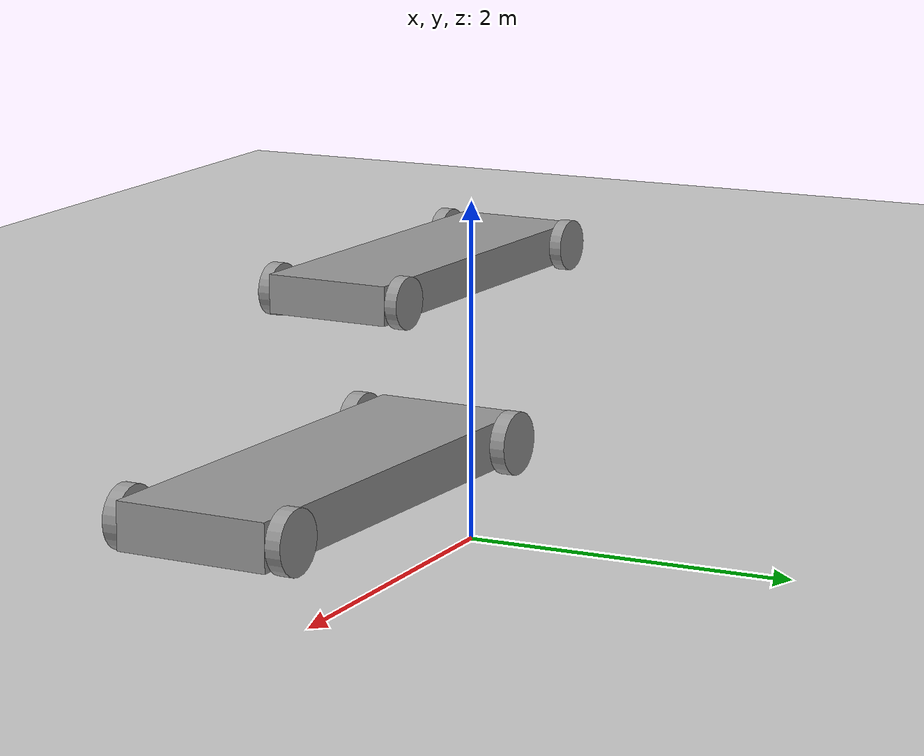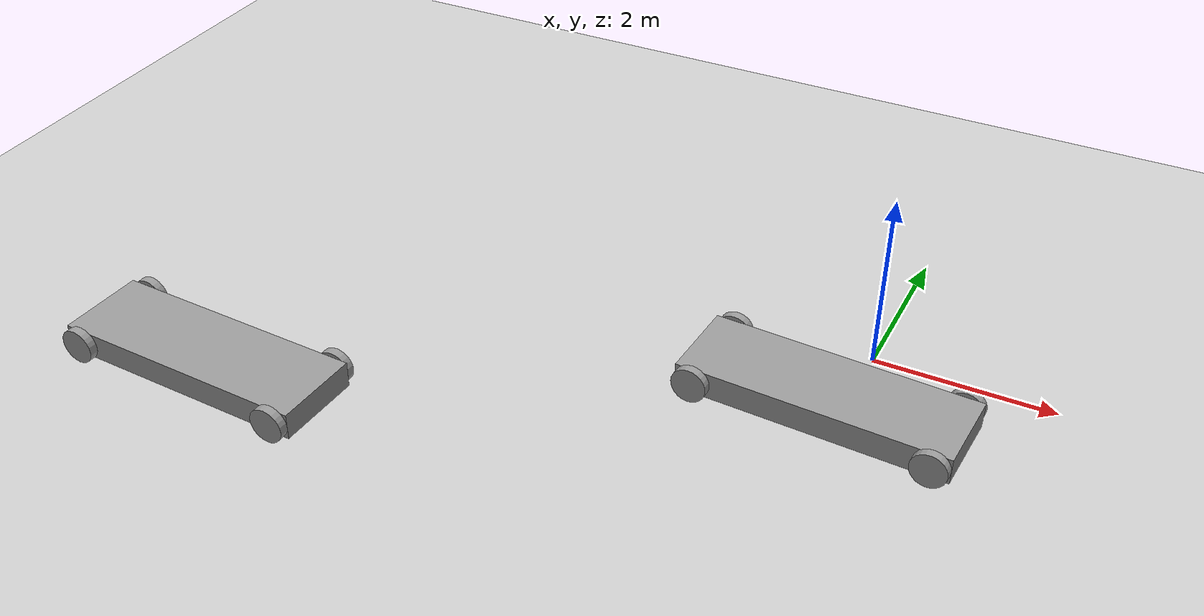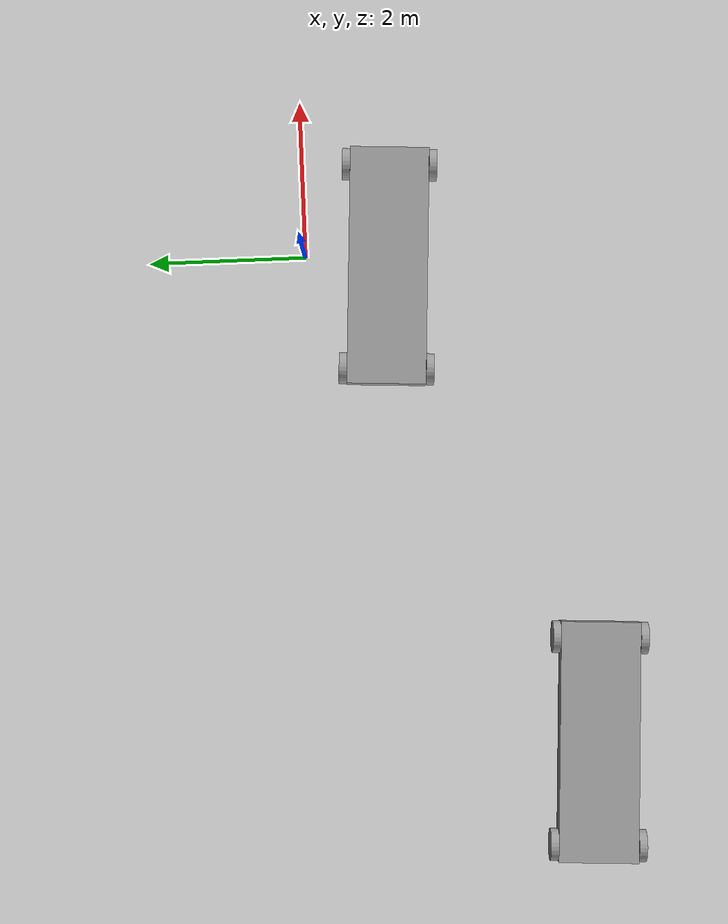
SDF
<sdf version="1.6">
 <world name="default">
  <model name="ground_plane">
   <static>1</static>
   <link name="link">
    <collision name="collision">
     <geometry><plane><normal>0 0 1</normal><size>100 100</size></plane></geometry>
     <surface><friction><ode><mu>100</mu><mu2>50</mu2></ode></friction></surface>
    </collision>
    <visual name="visual">
     <cast_shadows>0</cast_shadows>
     <geometry><plane><normal>0 0 1</normal><size>100 100</size></plane></geometry>
     <material>
      <script><uri>file://media/materials/scripts/gazebo.material</uri><name>Gazebo/Grey</name></script>
     </material>
    </visual>
   </link>
  </model>
  <model name="myrobot">
   <link name="link_0">
    <inertial>
     <mass>1</mass>
     <inertia>
      <ixx>0.166667</ixx>
      <ixy>0</ixy>
      <ixz>0</ixz>
      <iyy>0.166667</iyy>
      <iyz>0</iyz>
      <izz>0.166667</izz>
     </inertia>
    </inertial>
    <pose>3e-06 -1e-06 -1.3e-05 0 -0 0</pose>
    <visual name="visual">
     <geometry><box><size>3 1 0.3</size></box></geometry>
     <material>
      <lighting>1</lighting>
      <script><uri>file://media/materials/scripts/gazebo.material</uri><name>Gazebo/Grey</name></script>
      <shader type="vertex"><normal_map>__default__</normal_map></shader>
      <ambient>0.3 0.3 0.3 1</ambient>
      <diffuse>0.7 0.7 0.7 1</diffuse>
      <specular>0.01 0.01 0.01 1</specular>
      <emissive>0 0 0 1</emissive>
     </material>
    </visual>
    <collision name="collision">
     <geometry><box><size>3 1 0.3</size></box></geometry>
     <surface>
      <friction>
       <ode><mu>1</mu><mu2>1</mu2><fdir1>0 0 0</fdir1><slip1>0</slip1><slip2>0</slip2></ode>
       <torsional>
        <coefficient>1</coefficient>
        <patch_radius>0</patch_radius>
        <surface_radius>0</surface_radius>
        <use_patch_radius>1</use_patch_radius>
        <ode><slip>0</slip></ode>
       </torsional>
      </friction>
      <bounce><restitution_coefficient>0</restitution_coefficient><threshold>1e+06</threshold></bounce>
      <contact>
       <collide_without_contact>0</collide_without_contact>
       <collide_without_contact_bitmask>1</collide_without_contact_bitmask>
       <collide_bitmask>1</collide_bitmask>
       <ode>
        <soft_cfm>0</soft_cfm>
        <soft_erp>0.2</soft_erp>
        <kp>1e+13</kp>
        <kd>1</kd>
        <max_vel>0.01</max_vel>
        <min_depth>0</min_depth>
       </ode>
       <bullet>
        <split_impulse>1</split_impulse>
        <split_impulse_penetration_threshold>-0.01</split_impulse_penetration_threshold>
        <soft_cfm>0</soft_cfm>
        <soft_erp>0.2</soft_erp>
        <kp>1e+13</kp>
        <kd>1</kd>
       </bullet>
      </contact>
     </surface>
    </collision>
   </link>
   <link name="link_1">
    <inertial>
     <mass>1</mass>
     <inertia><ixx>0.145833</ixx><ixy>0</ixy><ixz>0</ixz><iyy>0.145833</iyy><iyz>0</iyz><izz>0.125</izz></inertia>
     <pose>0 0 0.2 0 -0 0</pose>
    </inertial>
    <pose>1.3 -0.550288 5.2e-05 1.57223 -0 0</pose>
    <visual name="visual">
     <geometry><cylinder><radius>0.2</radius><length>0.1</length></cylinder></geometry>
     <material>
      <lighting>1</lighting>
      <script><uri>file://media/materials/scripts/gazebo.material</uri><name>Gazebo/Grey</name></script>
      <shader type="vertex"><normal_map>__default__</normal_map></shader>
      <ambient>0.3 0.3 0.3 1</ambient>
      <diffuse>0.7 0.7 0.7 1</diffuse>
      <specular>0.01 0.01 0.01 1</specular>
      <emissive>0 0 0 1</emissive>
     </material>
    </visual>
    <collision name="collision">
     <geometry><cylinder><radius>0.2</radius><length>0.1</length></cylinder></geometry>
     <surface>
      <friction>
       <ode><mu>1</mu><mu2>1</mu2><fdir1>0 0 0</fdir1><slip1>0</slip1><slip2>0</slip2></ode>
       <torsional>
        <coefficient>1</coefficient>
        <patch_radius>0</patch_radius>
        <surface_radius>0</surface_radius>
        <use_patch_radius>1</use_patch_radius>
        <ode><slip>0</slip></ode>
       </torsional>
      </friction>
      <bounce><restitution_coefficient>0</restitution_coefficient><threshold>1e+06</threshold></bounce>
      <contact>
       <collide_without_contact>0</collide_without_contact>
       <collide_without_contact_bitmask>1</collide_without_contact_bitmask>
       <collide_bitmask>1</collide_bitmask>
       <ode>
        <soft_cfm>0</soft_cfm>
        <soft_erp>0.2</soft_erp>
        <kp>1e+13</kp>
        <kd>1</kd>
        <max_vel>0.01</max_vel>
        <min_depth>0</min_depth>
       </ode>
       <bullet>
        <split_impulse>1</split_impulse>
        <split_impulse_penetration_threshold>-0.01</split_impulse_penetration_threshold>
        <soft_cfm>0</soft_cfm>
        <soft_erp>0.2</soft_erp>
        <kp>1e+13</kp>
        <kd>1</kd>
       </bullet>
      </contact>
     </surface>
    </collision>
   </link>
   <link name="link_1_clone">
    <inertial>
     <mass>1</mass>
     <inertia><ixx>0.145833</ixx><ixy>0</ixy><ixz>0</ixz><iyy>0.145833</iyy><iyz>0</iyz><izz>0.125</izz></inertia>
     <pose>0 0 0.2 0 -0 0</pose>
    </inertial>
    <pose>-1.3 -0.550288 -1.3e-05 1.57223 -0 0</pose>
    <visual name="visual">
     <geometry><cylinder><radius>0.2</radius><length>0.1</length></cylinder></geometry>
     <material>
      <lighting>1</lighting>
      <script><uri>file://media/materials/scripts/gazebo.material</uri><name>Gazebo/Grey</name></script>
      <shader type="vertex"><normal_map>__default__</normal_map></shader>
      <ambient>0.3 0.3 0.3 1</ambient>
      <diffuse>0.7 0.7 0.7 1</diffuse>
      <specular>0.01 0.01 0.01 1</specular>
      <emissive>0 0 0 1</emissive>
     </material>
    </visual>
    <collision name="collision">
     <geometry><cylinder><radius>0.2</radius><length>0.1</length></cylinder></geometry>
     <surface>
      <friction>
       <ode><mu>1</mu><mu2>1</mu2><fdir1>0 0 0</fdir1><slip1>0</slip1><slip2>0</slip2></ode>
       <torsional>
        <coefficient>1</coefficient>
        <patch_radius>0</patch_radius>
        <surface_radius>0</surface_radius>
        <use_patch_radius>1</use_patch_radius>
        <ode><slip>0</slip></ode>
       </torsional>
      </friction>
      <bounce><restitution_coefficient>0</restitution_coefficient><threshold>1e+06</threshold></bounce>
      <contact>
       <collide_without_contact>0</collide_without_contact>
       <collide_without_contact_bitmask>1</collide_without_contact_bitmask>
       <collide_bitmask>1</collide_bitmask>
       <ode>
        <soft_cfm>0</soft_cfm>
        <soft_erp>0.2</soft_erp>
        <kp>1e+13</kp>
        <kd>1</kd>
        <max_vel>0.01</max_vel>
        <min_depth>0</min_depth>
       </ode>
       <bullet>
        <split_impulse>1</split_impulse>
        <split_impulse_penetration_threshold>-0.01</split_impulse_penetration_threshold>
        <soft_cfm>0</soft_cfm>
        <soft_erp>0.2</soft_erp>
        <kp>1e+13</kp>
        <kd>1</kd>
       </bullet>
      </contact>
     </surface>
    </collision>
   </link>
   <link name="link_1_clone_0">
    <inertial>
     <mass>1</mass>
     <inertia><ixx>0.145833</ixx><ixy>0</ixy><ixz>0</ixz><iyy>0.145833</iyy><iyz>0</iyz><izz>0.125</izz></inertia>
     <pose>0 0 0.2 0 -0 0</pose>
    </inertial>
    <pose>1.3 0.550285 -0.002459 1.57223 -0 0</pose>
    <visual name="visual">
     <geometry><cylinder><radius>0.2</radius><length>0.1</length></cylinder></geometry>
     <material>
      <lighting>1</lighting>
      <script><uri>file://media/materials/scripts/gazebo.material</uri><name>Gazebo/Grey</name></script>
      <shader type="vertex"><normal_map>__default__</normal_map></shader>
      <ambient>0.3 0.3 0.3 1</ambient>
      <diffuse>0.7 0.7 0.7 1</diffuse>
      <specular>0.01 0.01 0.01 1</specular>
      <emissive>0 0 0 1</emissive>
     </material>
    </visual>
    <collision name="collision">
     <geometry><cylinder><radius>0.2</radius><length>0.1</length></cylinder></geometry>
     <surface>
      <friction>
       <ode><mu>1</mu><mu2>1</mu2><fdir1>0 0 0</fdir1><slip1>0</slip1><slip2>0</slip2></ode>
       <torsional>
        <coefficient>1</coefficient>
        <patch_radius>0</patch_radius>
        <surface_radius>0</surface_radius>
        <use_patch_radius>1</use_patch_radius>
        <ode><slip>0</slip></ode>
       </torsional>
      </friction>
      <bounce><restitution_coefficient>0</restitution_coefficient><threshold>1e+06</threshold></bounce>
      <contact>
       <collide_without_contact>0</collide_without_contact>
       <collide_without_contact_bitmask>1</collide_without_contact_bitmask>
       <collide_bitmask>1</collide_bitmask>
       <ode>
        <soft_cfm>0</soft_cfm>
        <soft_erp>0.2</soft_erp>
        <kp>1e+13</kp>
        <kd>1</kd>
        <max_vel>0.01</max_vel>
        <min_depth>0</min_depth>
       </ode>
       <bullet>
        <split_impulse>1</split_impulse>
        <split_impulse_penetration_threshold>-0.01</split_impulse_penetration_threshold>
        <soft_cfm>0</soft_cfm>
        <soft_erp>0.2</soft_erp>
        <kp>1e+13</kp>
        <kd>1</kd>
       </bullet>
      </contact>
     </surface>
    </collision>
   </link>
   <link name="link_1_clone_1">
    <inertial>
     <mass>1</mass>
     <inertia><ixx>0.145833</ixx><ixy>0</ixy><ixz>0</ixz><iyy>0.145833</iyy><iyz>0</iyz><izz>0.125</izz></inertia>
     <pose>0 0 0.2 0 -0 0</pose>
    </inertial>
    <pose>-1.3 0.550285 -1.3e-05 1.57223 -0 0</pose>
    <visual name="visual">
     <geometry><cylinder><radius>0.2</radius><length>0.1</length></cylinder></geometry>
     <material>
      <lighting>1</lighting>
      <script><uri>file://media/materials/scripts/gazebo.material</uri><name>Gazebo/Grey</name></script>
      <shader type="vertex"><normal_map>__default__</normal_map></shader>
      <ambient>0.3 0.3 0.3 1</ambient>
      <diffuse>0.7 0.7 0.7 1</diffuse>
      <specular>0.01 0.01 0.01 1</specular>
      <emissive>0 0 0 1</emissive>
     </material>
    </visual>
    <collision name="collision">
     <geometry><cylinder><radius>0.2</radius><length>0.1</length></cylinder></geometry>
     <surface>
      <friction>
       <ode><mu>1</mu><mu2>1</mu2><fdir1>0 0 0</fdir1><slip1>0</slip1><slip2>0</slip2></ode>
       <torsional>
        <coefficient>1</coefficient>
        <patch_radius>0</patch_radius>
        <surface_radius>0</surface_radius>
        <use_patch_radius>1</use_patch_radius>
        <ode><slip>0</slip></ode>
       </torsional>
      </friction>
      <bounce><restitution_coefficient>0</restitution_coefficient><threshold>1e+06</threshold></bounce>
      <contact>
       <collide_without_contact>0</collide_without_contact>
       <collide_without_contact_bitmask>1</collide_without_contact_bitmask>
       <collide_bitmask>1</collide_bitmask>
       <ode>
        <soft_cfm>0</soft_cfm>
        <soft_erp>0.2</soft_erp>
        <kp>1e+13</kp>
        <kd>1</kd>
        <max_vel>0.01</max_vel>
        <min_depth>0</min_depth>
       </ode>
       <bullet>
        <split_impulse>1</split_impulse>
        <split_impulse_penetration_threshold>-0.01</split_impulse_penetration_threshold>
        <soft_cfm>0</soft_cfm>
        <soft_erp>0.2</soft_erp>
        <kp>1e+13</kp>
        <kd>1</kd>
       </bullet>
      </contact>
     </surface>
    </collision>
   </link>
   <joint name="link_0_JOINT_1" type="revolute">
    <parent>link_0</parent>
    <child>link_1</child>
    <axis>
     <xyz>0 0 1</xyz>
     <use_parent_model_frame>0</use_parent_model_frame>
     <limit>
      <lower>-1.79769e+308</lower>
      <upper>1.79769e+308</upper>
      <effort>-1</effort>
      <velocity>-1</velocity>
     </limit>
     <dynamics>
      <spring_reference>0</spring_reference>
      <spring_stiffness>0</spring_stiffness>
      <damping>0</damping>
      <friction>0</friction>
     </dynamics>
    </axis>
    <physics>
     <ode><limit><cfm>0</cfm><erp>0.2</erp></limit><suspension><cfm>0</cfm><erp>0.2</erp></suspension></ode>
    </physics>
   </joint>
   <joint name="link_0_JOINT_2" type="revolute">
    <parent>link_0</parent>
    <child>link_1_clone</child>
    <axis>
     <xyz>0 0 1</xyz>
     <use_parent_model_frame>0</use_parent_model_frame>
     <limit>
      <lower>-1.79769e+308</lower>
      <upper>1.79769e+308</upper>
      <effort>-1</effort>
      <velocity>-1</velocity>
     </limit>
     <dynamics>
      <spring_reference>0</spring_reference>
      <spring_stiffness>0</spring_stiffness>
      <damping>0</damping>
      <friction>0</friction>
     </dynamics>
    </axis>
    <physics>
     <ode><limit><cfm>0</cfm><erp>0.2</erp></limit><suspension><cfm>0</cfm><erp>0.2</erp></suspension></ode>
    </physics>
   </joint>
   <joint name="link_0_JOINT_3" type="revolute">
    <parent>link_0</parent>
    <child>link_1_clone_0</child>
    <axis>
     <xyz>-0 -0 -1</xyz>
     <use_parent_model_frame>0</use_parent_model_frame>
     <limit>
      <lower>-1.79769e+308</lower>
      <upper>1.79769e+308</upper>
      <effort>-1</effort>
      <velocity>-1</velocity>
     </limit>
     <dynamics>
      <spring_reference>0</spring_reference>
      <spring_stiffness>0</spring_stiffness>
      <damping>0</damping>
      <friction>0</friction>
     </dynamics>
    </axis>
    <physics>
     <ode><limit><cfm>0</cfm><erp>0.2</erp></limit><suspension><cfm>0</cfm><erp>0.2</erp></suspension></ode>
    </physics>
   </joint>
   <joint name="link_0_JOINT_4" type="revolute">
    <parent>link_0</parent>
    <child>link_1_clone_1</child>
    <axis>
     <xyz>-0 -0 -1</xyz>
     <use_parent_model_frame>0</use_parent_model_frame>
     <limit>
      <lower>-1.79769e+308</lower>
      <upper>1.79769e+308</upper>
      <effort>-1</effort>
      <velocity>-1</velocity>
     </limit>
     <dynamics>
      <spring_reference>0</spring_reference>
      <spring_stiffness>0</spring_stiffness>
      <damping>0</damping>
      <friction>0</friction>
     </dynamics>
    </axis>
    <physics>
     <ode><limit><cfm>0</cfm><erp>0.2</erp></limit><suspension><cfm>0</cfm><erp>0.2</erp></suspension></ode>
    </physics>
   </joint>
   <static>0</static>
   <pose>-0.178042 -1.04353 0.201413 0.002277 2.9e-05 -0.055999</pose>
  </model>
  <model name="myrobot_clone">
   <link name="link_0">
    <inertial>
     <mass>1</mass>
     <inertia>
      <ixx>0.166667</ixx>
      <ixy>0</ixy>
      <ixz>0</ixz>
      <iyy>0.166667</iyy>
      <iyz>0</iyz>
      <izz>0.166667</izz>
     </inertia>
    </inertial>
    <pose>3e-06 -1e-06 -1.3e-05 0 -0 0</pose>
    <visual name="visual">
     <geometry><box><size>3 1 0.3</size></box></geometry>
     <material>
      <lighting>1</lighting>
      <script><uri>file://media/materials/scripts/gazebo.material</uri><name>Gazebo/Grey</name></script>
      <shader type="vertex"><normal_map>__default__</normal_map></shader>
      <ambient>0.3 0.3 0.3 1</ambient>
      <diffuse>0.7 0.7 0.7 1</diffuse>
      <specular>0.01 0.01 0.01 1</specular>
      <emissive>0 0 0 1</emissive>
     </material>
    </visual>
    <collision name="collision">
     <geometry><box><size>3 1 0.3</size></box></geometry>
     <surface>
      <friction>
       <ode><mu>1</mu><mu2>1</mu2><fdir1>0 0 0</fdir1><slip1>0</slip1><slip2>0</slip2></ode>
       <torsional>
        <coefficient>1</coefficient>
        <patch_radius>0</patch_radius>
        <surface_radius>0</surface_radius>
        <use_patch_radius>1</use_patch_radius>
        <ode><slip>0</slip></ode>
       </torsional>
      </friction>
      <bounce><restitution_coefficient>0</restitution_coefficient><threshold>1e+06</threshold></bounce>
      <contact>
       <collide_without_contact>0</collide_without_contact>
       <collide_without_contact_bitmask>1</collide_without_contact_bitmask>
       <collide_bitmask>1</collide_bitmask>
       <ode>
        <soft_cfm>0</soft_cfm>
        <soft_erp>0.2</soft_erp>
        <kp>1e+13</kp>
        <kd>1</kd>
        <max_vel>0.01</max_vel>
        <min_depth>0</min_depth>
       </ode>
       <bullet>
        <split_impulse>1</split_impulse>
        <split_impulse_penetration_threshold>-0.01</split_impulse_penetration_threshold>
        <soft_cfm>0</soft_cfm>
        <soft_erp>0.2</soft_erp>
        <kp>1e+13</kp>
        <kd>1</kd>
       </bullet>
      </contact>
     </surface>
    </collision>
   </link>
   <link name="link_1">
    <inertial>
     <mass>1</mass>
     <inertia><ixx>0.145833</ixx><ixy>0</ixy><ixz>0</ixz><iyy>0.145833</iyy><iyz>0</iyz><izz>0.125</izz></inertia>
     <pose>0 0 0.2 0 -0 0</pose>
    </inertial>
    <pose>1.3 -0.550288 5.2e-05 1.57223 -0 0</pose>
    <visual name="visual">
     <geometry><cylinder><radius>0.2</radius><length>0.1</length></cylinder></geometry>
     <material>
      <lighting>1</lighting>
      <script><uri>file://media/materials/scripts/gazebo.material</uri><name>Gazebo/Grey</name></script>
      <shader type="vertex"><normal_map>__default__</normal_map></shader>
      <ambient>0.3 0.3 0.3 1</ambient>
      <diffuse>0.7 0.7 0.7 1</diffuse>
      <specular>0.01 0.01 0.01 1</specular>
      <emissive>0 0 0 1</emissive>
     </material>
    </visual>
    <collision name="collision">
     <geometry><cylinder><radius>0.2</radius><length>0.1</length></cylinder></geometry>
     <surface>
      <friction>
       <ode><mu>1</mu><mu2>1</mu2><fdir1>0 0 0</fdir1><slip1>0</slip1><slip2>0</slip2></ode>
       <torsional>
        <coefficient>1</coefficient>
        <patch_radius>0</patch_radius>
        <surface_radius>0</surface_radius>
        <use_patch_radius>1</use_patch_radius>
        <ode><slip>0</slip></ode>
       </torsional>
      </friction>
      <bounce><restitution_coefficient>0</restitution_coefficient><threshold>1e+06</threshold></bounce>
      <contact>
       <collide_without_contact>0</collide_without_contact>
       <collide_without_contact_bitmask>1</collide_without_contact_bitmask>
       <collide_bitmask>1</collide_bitmask>
       <ode>
        <soft_cfm>0</soft_cfm>
        <soft_erp>0.2</soft_erp>
        <kp>1e+13</kp>
        <kd>1</kd>
        <max_vel>0.01</max_vel>
        <min_depth>0</min_depth>
       </ode>
       <bullet>
        <split_impulse>1</split_impulse>
        <split_impulse_penetration_threshold>-0.01</split_impulse_penetration_threshold>
        <soft_cfm>0</soft_cfm>
        <soft_erp>0.2</soft_erp>
        <kp>1e+13</kp>
        <kd>1</kd>
       </bullet>
      </contact>
     </surface>
    </collision>
   </link>
   <link name="link_1_clone">
    <inertial>
     <mass>1</mass>
     <inertia><ixx>0.145833</ixx><ixy>0</ixy><ixz>0</ixz><iyy>0.145833</iyy><iyz>0</iyz><izz>0.125</izz></inertia>
     <pose>0 0 0.2 0 -0 0</pose>
    </inertial>
    <pose>-1.3 -0.550288 -1.3e-05 1.57223 -0 0</pose>
    <visual name="visual">
     <geometry><cylinder><radius>0.2</radius><length>0.1</length></cylinder></geometry>
     <material>
      <lighting>1</lighting>
      <script><uri>file://media/materials/scripts/gazebo.material</uri><name>Gazebo/Grey</name></script>
      <shader type="vertex"><normal_map>__default__</normal_map></shader>
      <ambient>0.3 0.3 0.3 1</ambient>
      <diffuse>0.7 0.7 0.7 1</diffuse>
      <specular>0.01 0.01 0.01 1</specular>
      <emissive>0 0 0 1</emissive>
     </material>
    </visual>
    <collision name="collision">
     <geometry><cylinder><radius>0.2</radius><length>0.1</length></cylinder></geometry>
     <surface>
      <friction>
       <ode><mu>1</mu><mu2>1</mu2><fdir1>0 0 0</fdir1><slip1>0</slip1><slip2>0</slip2></ode>
       <torsional>
        <coefficient>1</coefficient>
        <patch_radius>0</patch_radius>
        <surface_radius>0</surface_radius>
        <use_patch_radius>1</use_patch_radius>
        <ode><slip>0</slip></ode>
       </torsional>
      </friction>
      <bounce><restitution_coefficient>0</restitution_coefficient><threshold>1e+06</threshold></bounce>
      <contact>
       <collide_without_contact>0</collide_without_contact>
       <collide_without_contact_bitmask>1</collide_without_contact_bitmask>
       <collide_bitmask>1</collide_bitmask>
       <ode>
        <soft_cfm>0</soft_cfm>
        <soft_erp>0.2</soft_erp>
        <kp>1e+13</kp>
        <kd>1</kd>
        <max_vel>0.01</max_vel>
        <min_depth>0</min_depth>
       </ode>
       <bullet>
        <split_impulse>1</split_impulse>
        <split_impulse_penetration_threshold>-0.01</split_impulse_penetration_threshold>
        <soft_cfm>0</soft_cfm>
        <soft_erp>0.2</soft_erp>
        <kp>1e+13</kp>
        <kd>1</kd>
       </bullet>
      </contact>
     </surface>
    </collision>
   </link>
   <link name="link_1_clone_0">
    <inertial>
     <mass>1</mass>
     <inertia><ixx>0.145833</ixx><ixy>0</ixy><ixz>0</ixz><iyy>0.145833</iyy><iyz>0</iyz><izz>0.125</izz></inertia>
     <pose>0 0 0.2 0 -0 0</pose>
    </inertial>
    <pose>1.3 0.550285 -0.002459 1.57223 -0 0</pose>
    <visual name="visual">
     <geometry><cylinder><radius>0.2</radius><length>0.1</length></cylinder></geometry>
     <material>
      <lighting>1</lighting>
      <script><uri>file://media/materials/scripts/gazebo.material</uri><name>Gazebo/Grey</name></script>
      <shader type="vertex"><normal_map>__default__</normal_map></shader>
      <ambient>0.3 0.3 0.3 1</ambient>
      <diffuse>0.7 0.7 0.7 1</diffuse>
      <specular>0.01 0.01 0.01 1</specular>
      <emissive>0 0 0 1</emissive>
     </material>
    </visual>
    <collision name="collision">
     <geometry><cylinder><radius>0.2</radius><length>0.1</length></cylinder></geometry>
     <surface>
      <friction>
       <ode><mu>1</mu><mu2>1</mu2><fdir1>0 0 0</fdir1><slip1>0</slip1><slip2>0</slip2></ode>
       <torsional>
        <coefficient>1</coefficient>
        <patch_radius>0</patch_radius>
        <surface_radius>0</surface_radius>
        <use_patch_radius>1</use_patch_radius>
        <ode><slip>0</slip></ode>
       </torsional>
      </friction>
      <bounce><restitution_coefficient>0</restitution_coefficient><threshold>1e+06</threshold></bounce>
      <contact>
       <collide_without_contact>0</collide_without_contact>
       <collide_without_contact_bitmask>1</collide_without_contact_bitmask>
       <collide_bitmask>1</collide_bitmask>
       <ode>
        <soft_cfm>0</soft_cfm>
        <soft_erp>0.2</soft_erp>
        <kp>1e+13</kp>
        <kd>1</kd>
        <max_vel>0.01</max_vel>
        <min_depth>0</min_depth>
       </ode>
       <bullet>
        <split_impulse>1</split_impulse>
        <split_impulse_penetration_threshold>-0.01</split_impulse_penetration_threshold>
        <soft_cfm>0</soft_cfm>
        <soft_erp>0.2</soft_erp>
        <kp>1e+13</kp>
        <kd>1</kd>
       </bullet>
      </contact>
     </surface>
    </collision>
   </link>
   <link name="link_1_clone_1">
    <inertial>
     <mass>1</mass>
     <inertia><ixx>0.145833</ixx><ixy>0</ixy><ixz>0</ixz><iyy>0.145833</iyy><iyz>0</iyz><izz>0.125</izz></inertia>
     <pose>0 0 0.2 0 -0 0</pose>
    </inertial>
    <pose>-1.3 0.550285 -1.3e-05 1.57223 -0 0</pose>
    <visual name="visual">
     <geometry><cylinder><radius>0.2</radius><length>0.1</length></cylinder></geometry>
     <material>
      <lighting>1</lighting>
      <script><uri>file://media/materials/scripts/gazebo.material</uri><name>Gazebo/Grey</name></script>
      <shader type="vertex"><normal_map>__default__</normal_map></shader>
      <ambient>0.3 0.3 0.3 1</ambient>
      <diffuse>0.7 0.7 0.7 1</diffuse>
      <specular>0.01 0.01 0.01 1</specular>
      <emissive>0 0 0 1</emissive>
     </material>
    </visual>
    <collision name="collision">
     <geometry><cylinder><radius>0.2</radius><length>0.1</length></cylinder></geometry>
     <surface>
      <friction>
       <ode><mu>1</mu><mu2>1</mu2><fdir1>0 0 0</fdir1><slip1>0</slip1><slip2>0</slip2></ode>
       <torsional>
        <coefficient>1</coefficient>
        <patch_radius>0</patch_radius>
        <surface_radius>0</surface_radius>
        <use_patch_radius>1</use_patch_radius>
        <ode><slip>0</slip></ode>
       </torsional>
      </friction>
      <bounce><restitution_coefficient>0</restitution_coefficient><threshold>1e+06</threshold></bounce>
      <contact>
       <collide_without_contact>0</collide_without_contact>
       <collide_without_contact_bitmask>1</collide_without_contact_bitmask>
       <collide_bitmask>1</collide_bitmask>
       <ode>
        <soft_cfm>0</soft_cfm>
        <soft_erp>0.2</soft_erp>
        <kp>1e+13</kp>
        <kd>1</kd>
        <max_vel>0.01</max_vel>
        <min_depth>0</min_depth>
       </ode>
       <bullet>
        <split_impulse>1</split_impulse>
        <split_impulse_penetration_threshold>-0.01</split_impulse_penetration_threshold>
        <soft_cfm>0</soft_cfm>
        <soft_erp>0.2</soft_erp>
        <kp>1e+13</kp>
        <kd>1</kd>
       </bullet>
      </contact>
     </surface>
    </collision>
   </link>
   <joint name="link_0_JOINT_1" type="revolute">
    <parent>link_0</parent>
    <child>link_1</child>
    <axis>
     <xyz>0 0 1</xyz>
     <use_parent_model_frame>0</use_parent_model_frame>
     <limit>
      <lower>-1.79769e+308</lower>
      <upper>1.79769e+308</upper>
      <effort>-1</effort>
      <velocity>-1</velocity>
     </limit>
     <dynamics>
      <spring_reference>0</spring_reference>
      <spring_stiffness>0</spring_stiffness>
      <damping>0</damping>
      <friction>0</friction>
     </dynamics>
    </axis>
    <physics>
     <ode><limit><cfm>0</cfm><erp>0.2</erp></limit><suspension><cfm>0</cfm><erp>0.2</erp></suspension></ode>
    </physics>
   </joint>
   <joint name="link_0_JOINT_2" type="revolute">
    <parent>link_0</parent>
    <child>link_1_clone</child>
    <axis>
     <xyz>0 0 1</xyz>
     <use_parent_model_frame>0</use_parent_model_frame>
     <limit>
      <lower>-1.79769e+308</lower>
      <upper>1.79769e+308</upper>
      <effort>-1</effort>
      <velocity>-1</velocity>
     </limit>
     <dynamics>
      <spring_reference>0</spring_reference>
      <spring_stiffness>0</spring_stiffness>
      <damping>0</damping>
      <friction>0</friction>
     </dynamics>
    </axis>
    <physics>
     <ode><limit><cfm>0</cfm><erp>0.2</erp></limit><suspension><cfm>0</cfm><erp>0.2</erp></suspension></ode>
    </physics>
   </joint>
   <joint name="link_0_JOINT_3" type="revolute">
    <parent>link_0</parent>
    <child>link_1_clone_0</child>
    <axis>
     <xyz>-0 -0 -1</xyz>
     <use_parent_model_frame>0</use_parent_model_frame>
     <limit>
      <lower>-1.79769e+308</lower>
      <upper>1.79769e+308</upper>
      <effort>-1</effort>
      <velocity>-1</velocity>
     </limit>
     <dynamics>
      <spring_reference>0</spring_reference>
      <spring_stiffness>0</spring_stiffness>
      <damping>0</damping>
      <friction>0</friction>
     </dynamics>
    </axis>
    <physics>
     <ode><limit><cfm>0</cfm><erp>0.2</erp></limit><suspension><cfm>0</cfm><erp>0.2</erp></suspension></ode>
    </physics>
   </joint>
   <joint name="link_0_JOINT_4" type="revolute">
    <parent>link_0</parent>
    <child>link_1_clone_1</child>
    <axis>
     <xyz>-0 -0 -1</xyz>
     <use_parent_model_frame>0</use_parent_model_frame>
     <limit>
      <lower>-1.79769e+308</lower>
      <upper>1.79769e+308</upper>
      <effort>-1</effort>
      <velocity>-1</velocity>
     </limit>
     <dynamics>
      <spring_reference>0</spring_reference>
      <spring_stiffness>0</spring_stiffness>
      <damping>0</damping>
      <friction>0</friction>
     </dynamics>
    </axis>
    <physics>
     <ode><limit><cfm>0</cfm><erp>0.2</erp></limit><suspension><cfm>0</cfm><erp>0.2</erp></suspension></ode>
    </physics>
   </joint>
   <static>0</static>
   <pose>-6.27752 -3.44232 0.20142 0.002276 2.3e-05 -0.05593</pose>
  </model>
 </world>
</sdf>
